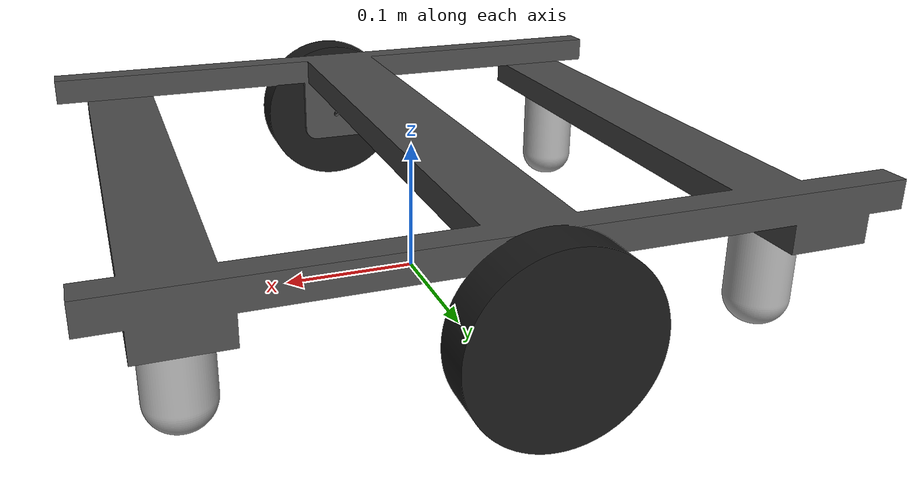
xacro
<?xml version="1.0"?>
<robot xmlns:xacro="http://www.ros.org/wiki/xacro" name="servebot">

<!-- Include Gazebo Parameters -->
<xacro:include filename="$(find servebot_description)/urdf/servebot_gazebo.xacro" />

<!-- BASE FOOTPRINT -->
  <link name="base_footprint"/>

  <joint name="base_footprint_joint" type="fixed">
    <parent link="base_footprint"/>
    <child  link="base_link"/>
    <origin xyz="0 0 0" rpy="0 0 0"/>
  </joint>

  <!-- BASE LINK -->
  <link name="base_link">
    <inertial>
      <origin xyz="3.8279058168706735e-16 -3.8279058168706733e-17 0.09845474977897602" rpy="0 0 0"/>
      <mass value="5.132071293842641"/>
      <inertia ixx="0.11579" iyy="0.127513" izz="0.241747" ixy="-0.0" iyz="0.0" ixz="0.0"/>
    </inertial>
    <visual>
      <origin xyz="0.0 0.0 0.0" rpy="0 0 0"/>
      <geometry>
        <mesh filename="package://servebot_description/meshes/base_link.stl" scale="0.001 0.001 0.001"/>
      </geometry>
      <material name="dark_gray">
        <color rgba="0.3 0.3 0.3 1.0"/>
      </material>
    </visual>
    <collision>
      <origin xyz="0.0 0.0 0.0" rpy="0 0 0"/>
      <geometry>
        <mesh filename="package://servebot_description/meshes/base_link.stl" scale="0.001 0.001 0.001"/>
      </geometry>
    </collision>
  </link>

  <!-- RIGHT WHEEL -->
  <joint name="wheel_right_joint" type="continuous">
    <parent link="base_link"/>
    <child  link="wheel_right"/>
    <origin xyz="0 -0.2225 0.0625" rpy="0 0 0"/>
    <axis xyz="0 1 0"/>
  </joint>

  <link name="wheel_right">
    <inertial>
      <origin xyz="8.603722720054142e-15 0.019888712241653395 0.0" rpy="0 0 0"/>
      <mass value="0.344575772731954"/>
      <inertia ixx="0.000361" iyy="0.000669" izz="0.000361" ixy="0.0" iyz="0.0" ixz="0.0"/>
    </inertial>
    <visual>
      <origin xyz="0.0 0.0 0.0" rpy="3.14 0 0"/>
      <geometry>
        <mesh filename="package://servebot_description/meshes/wheel_right.stl" scale="0.001 0.001 0.001"/>
      </geometry>
      <material name="black">
        <color rgba="0.1 0.1 0.1 1.0"/>
      </material>
    </visual>
    <collision>
      <origin xyz="0.0 0.0 0.0" rpy="3.14 0 0"/>
      <geometry>
        <mesh filename="package://servebot_description/meshes/wheel_right.stl" scale="0.001 0.001 0.001"/>
      </geometry>
    </collision>
  </link>

  <!-- LEFT WHEEL -->
  <joint name="wheel_left_joint" type="continuous">
    <parent link="base_link"/>
    <child  link="wheel_left"/>
    <origin xyz="0 0.2225 0.0625" rpy="0 0 0"/>
    <axis xyz="0 1 0"/>
  </joint>

  <link name="wheel_left">
    <inertial>
      <origin xyz="8.603722720054142e-15 -0.019888712241653395 1.3877787807814457e-17" rpy="0 0 0"/>
      <mass value="0.344575772731954"/>
      <inertia ixx="0.000361" iyy="0.000669" izz="0.000361" ixy="-0.0" iyz="0.0" ixz="-0.0"/>
    </inertial>
    <visual>
      <origin xyz="0.0 0.0 0.0" rpy="0 0 0"/>
      <geometry>
        <mesh filename="package://servebot_description/meshes/wheel_left.stl" scale="0.001 0.001 0.001"/>
      </geometry>
      <material name="black">
        <color rgba="0.1 0.1 0.1 1.0"/>
      </material>
    </visual>
    <collision>
       <origin xyz="0.0 0.0 0.0" rpy="0 0 0"/>
      <geometry>
        <mesh filename="package://servebot_description/meshes/wheel_left.stl" scale="0.001 0.001 0.001"/>
      </geometry>
    </collision>
  </link>

  <!-- CASTER FRONT RIGHT -->
  <joint name="caster_front_right_joint" type="fixed">
    <parent link="base_link"/>
    <child  link="caster_front_right"/>
    <origin xyz="0.1975 -0.1625 0.0795" rpy="0 0 0"/>
  </joint>

  <link name="caster_front_right">
    <inertial>
      <origin xyz="-2.220446049250313e-16 0.0 -0.03687697337696345" rpy="0 0 0"/>
      <mass value="0.13177511785394527"/>
      <inertia ixx="7.7e-05" iyy="7.7e-05" izz="3.2e-05" ixy="0.0" iyz="-0.0" ixz="0.0"/>
    </inertial>
    <visual>
      <origin xyz="0 0 0" rpy="-1.57 0 0"/>
      <geometry>
        <mesh filename="package://servebot_description/meshes/caster_front_right.stl" scale="0.001 0.001 0.001"/>
      </geometry>
      <material name="light_gray">
        <color rgba="0.7 0.7 0.7 1.0"/>
      </material>
    </visual>
    <collision>
      <origin xyz="0 0 0" rpy="-1.57 0 0"/>
      <geometry>
        <mesh filename="package://servebot_description/meshes/caster_front_right.stl" scale="0.001 0.001 0.001"/>
      </geometry>
    </collision>
  </link>

  <!-- CASTER FRONT LEFT -->
  <joint name="caster_front_left_joint" type="fixed">
    <parent link="base_link"/>
    <child  link="caster_front_left"/>
    <origin xyz="0.1975 0.1625 0.0795" rpy="0 0 0"/>
  </joint>

  <link name="caster_front_left">
    <inertial>
      <origin xyz="-2.220446049250313e-16 0.0 -0.03687697337696341" rpy="0 0 0"/>
      <mass value="0.13177511785394527"/>
      <inertia ixx="7.7e-05" iyy="7.7e-05" izz="3.2e-05" ixy="0.0" iyz="0.0" ixz="0.0"/>
    </inertial>
    <visual>
      <origin xyz="0 0 0" rpy="-1.57 0 0"/>
      <geometry>
        <mesh filename="package://servebot_description/meshes/caster_front_left.stl" scale="0.001 0.001 0.001"/>
      </geometry>
      <material name="light_gray">
        <color rgba="0.7 0.7 0.7 1.0"/>
      </material>
    </visual>
    <collision>
      <origin xyz="0 0 0" rpy="-1.57 0 0"/>
      <geometry>
        <mesh filename="package://servebot_description/meshes/caster_front_left.stl" scale="0.001 0.001 0.001"/>
      </geometry>
    </collision>
  </link>

  <!-- CASTER REAR RIGHT -->
  <joint name="caster_rear_right_joint" type="fixed">
    <parent link="base_link"/>
    <child  link="caster_rear_right"/>
    <origin xyz="-0.1975 -0.1625 0.0795" rpy="0 0 0"/>
  </joint>

  <link name="caster_rear_right">
    <inertial>
      <origin xyz="-1.942890293094024e-16 0.0 -0.03687697337696345" rpy="0 0 0"/>
      <mass value="0.13177511785394527"/>
      <inertia ixx="7.7e-05" iyy="7.7e-05" izz="3.2e-05" ixy="0.0" iyz="-0.0" ixz="0.0"/>
    </inertial>
    <visual>
      <origin xyz="0 0 0" rpy="-1.57 0 0"/>
      <geometry>
        <mesh filename="package://servebot_description/meshes/caster_rear_right.stl" scale="0.001 0.001 0.001"/>
      </geometry>
      <material name="light_gray">
        <color rgba="0.7 0.7 0.7 1.0"/>
      </material>
    </visual>
    <collision>
      <origin xyz="0 0 0" rpy="-1.57 0 0"/>
      <geometry>
        <mesh filename="package://servebot_description/meshes/caster_rear_right.stl" scale="0.001 0.001 0.001"/>
      </geometry>
    </collision>
  </link>

  <!-- CASTER REAR LEFT -->
  <joint name="caster_rear_left_joint" type="fixed">
    <parent link="base_link"/>
    <child  link="caster_rear_left"/>
    <origin xyz="-0.1975 0.1625 0.0795" rpy="0 0 0"/>
  </joint>

  <link name="caster_rear_left">
    <inertial>
      <origin xyz="-1.942890293094024e-16 0.0 -0.03687697337696341" rpy="0 0 0"/>
      <mass value="0.13177511785394527"/>
      <inertia ixx="7.7e-05" iyy="7.7e-05" izz="3.2e-05" ixy="0.0" iyz="0.0" ixz="0.0"/>
    </inertial>
    <visual>
      <origin xyz="0 0 0" rpy="-1.57 0 0"/>
      <geometry>
        <mesh filename="package://servebot_description/meshes/caster_rear_left.stl" scale="0.001 0.001 0.001"/>
      </geometry>
      <material name="light_gray">
        <color rgba="0.7 0.7 0.7 1.0"/>
      </material>
    </visual>
    <collision>
      <origin xyz="0 0 0" rpy="-1.57 0 0"/>
      <geometry>
        <mesh filename="package://servebot_description/meshes/caster_rear_left.stl" scale="0.001 0.001 0.001"/>
      </geometry>
    </collision>
  </link>

</robot>
